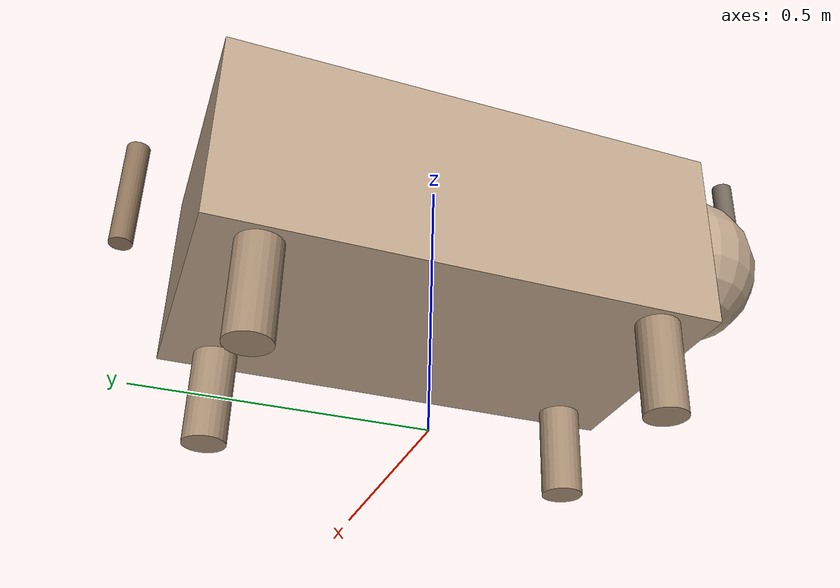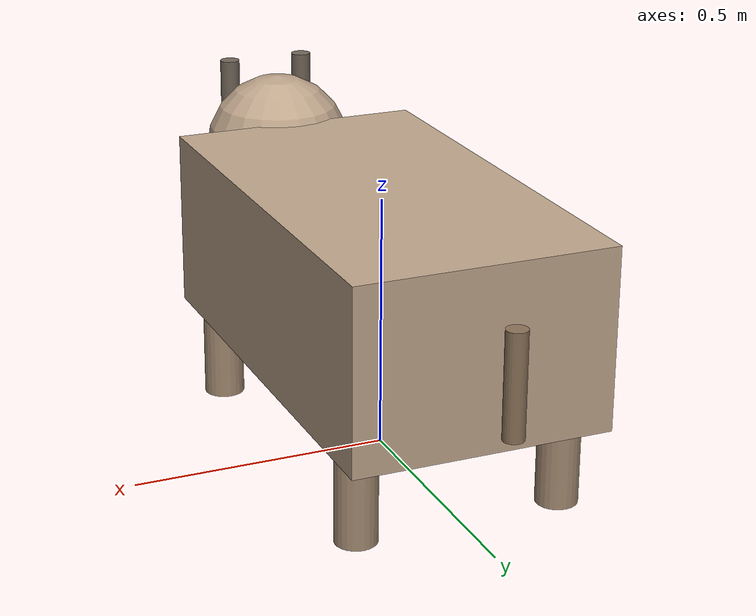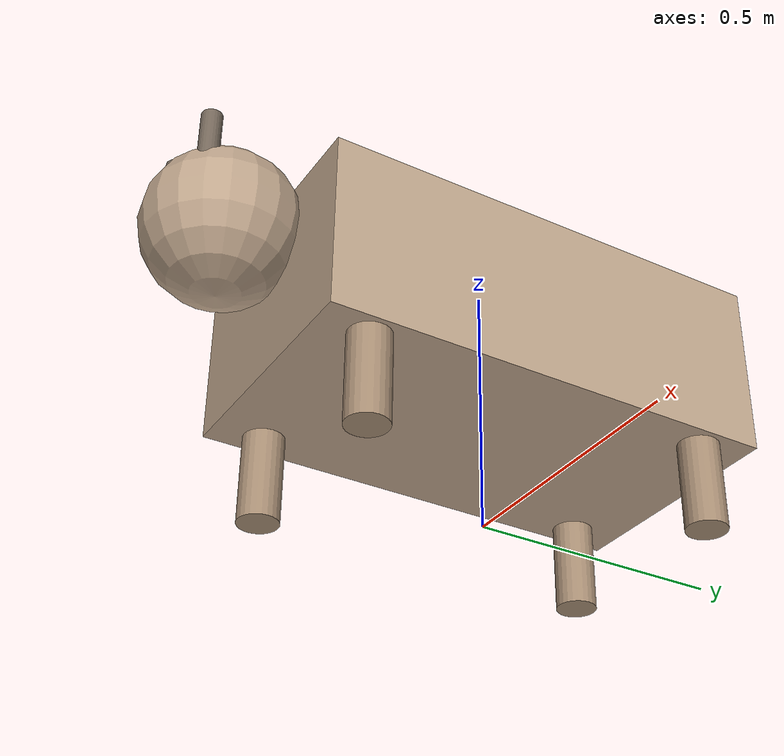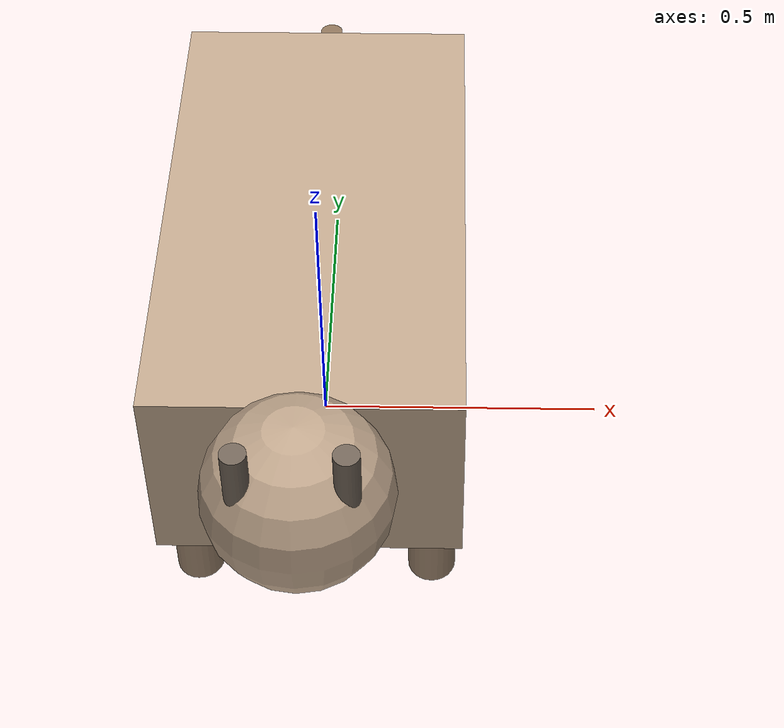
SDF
<?xml version="1.0"?>
<sdf version="1.9">
  <model name="farm_animal">
    <static>true</static>
    <link name="body">
      <collision name="col">
        <pose>0 0 0.35 0 0 0</pose>
        <geometry><box><size>0.6 1.0 0.5</size></box></geometry>
      </collision>
      <!-- Body -->
      <visual name="body_vis">
        <pose>0 0 0.35 0 0 0</pose>
        <geometry><box><size>0.5 0.9 0.35</size></box></geometry>
        <material>
          <ambient>0.7 0.6 0.5 1</ambient>
          <diffuse>0.75 0.65 0.55 1</diffuse>
        </material>
      </visual>
      <!-- Head -->
      <visual name="head">
        <pose>0 -0.55 0.45 0 0 0</pose>
        <geometry><sphere><radius>0.15</radius></sphere></geometry>
        <material>
          <ambient>0.7 0.6 0.5 1</ambient>
          <diffuse>0.75 0.65 0.55 1</diffuse>
        </material>
      </visual>
      <!-- 4 legs -->
      <visual name="leg_fl">
        <pose>-0.2 0.35 0.1 0 0 0</pose>
        <geometry><cylinder><radius>0.04</radius><length>0.2</length></cylinder></geometry>
        <material><ambient>0.6 0.5 0.4 1</ambient><diffuse>0.65 0.55 0.45 1</diffuse></material>
      </visual>
      <visual name="leg_fr">
        <pose>0.2 0.35 0.1 0 0 0</pose>
        <geometry><cylinder><radius>0.04</radius><length>0.2</length></cylinder></geometry>
        <material><ambient>0.6 0.5 0.4 1</ambient><diffuse>0.65 0.55 0.45 1</diffuse></material>
      </visual>
      <visual name="leg_rl">
        <pose>-0.2 -0.35 0.1 0 0 0</pose>
        <geometry><cylinder><radius>0.04</radius><length>0.2</length></cylinder></geometry>
        <material><ambient>0.6 0.5 0.4 1</ambient><diffuse>0.65 0.55 0.45 1</diffuse></material>
      </visual>
      <visual name="leg_rr">
        <pose>0.2 -0.35 0.1 0 0 0</pose>
        <geometry><cylinder><radius>0.04</radius><length>0.2</length></cylinder></geometry>
        <material><ambient>0.6 0.5 0.4 1</ambient><diffuse>0.65 0.55 0.45 1</diffuse></material>
      </visual>
      <!-- Horns -->
      <visual name="horn_l">
        <pose>-0.08 -0.62 0.55 0 0 0.4</pose>
        <geometry><cylinder><radius>0.02</radius><length>0.15</length></cylinder></geometry>
        <material><ambient>0.4 0.35 0.3 1</ambient><diffuse>0.45 0.4 0.35 1</diffuse></material>
      </visual>
      <visual name="horn_r">
        <pose>0.08 -0.62 0.55 0 0 -0.4</pose>
        <geometry><cylinder><radius>0.02</radius><length>0.15</length></cylinder></geometry>
        <material><ambient>0.4 0.35 0.3 1</ambient><diffuse>0.45 0.4 0.35 1</diffuse></material>
      </visual>
      <!-- Tail -->
      <visual name="tail">
        <pose>0 0.55 0.35 0 0 0</pose>
        <geometry><cylinder><radius>0.02</radius><length>0.2</length></cylinder></geometry>
        <material><ambient>0.5 0.4 0.3 1</ambient><diffuse>0.55 0.45 0.35 1</diffuse></material>
      </visual>
    </link>
  </model>
</sdf>
